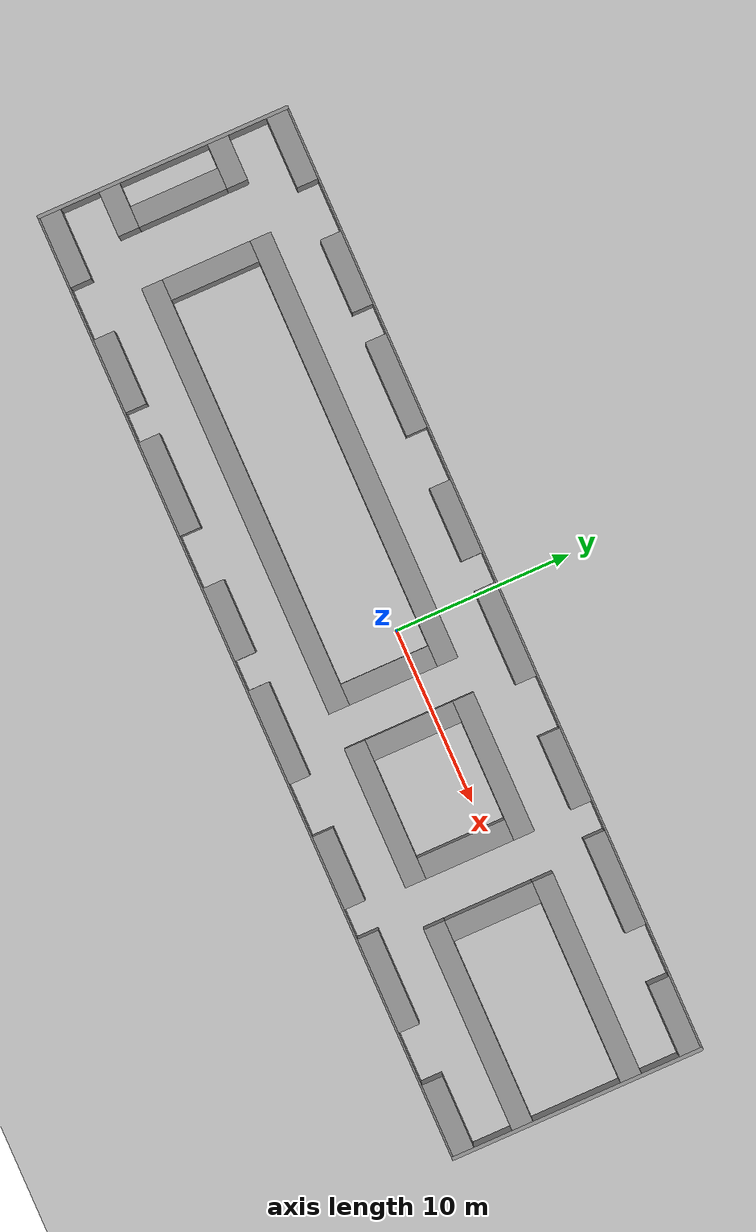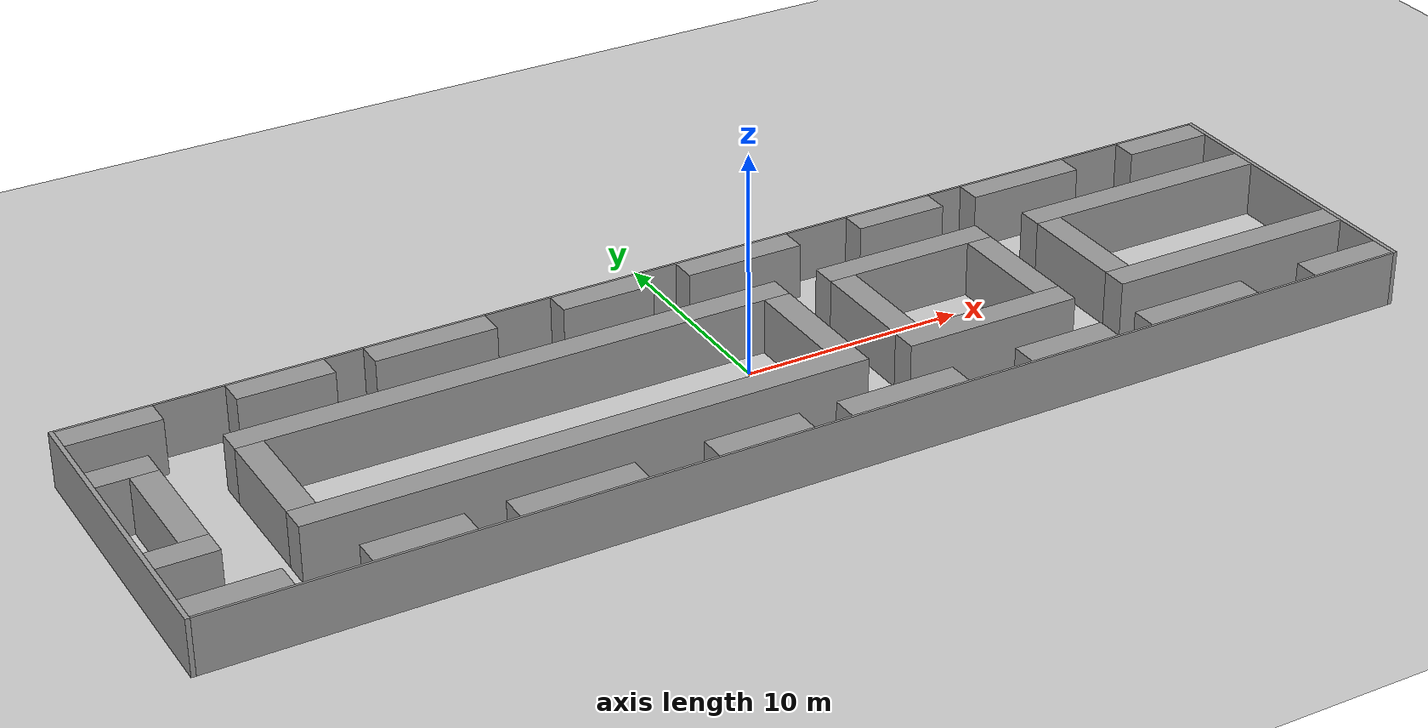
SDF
<sdf version="1.7">
 <world name="default">
  <light name="sun" type="directional">
   <pose>0 0 10 0 -0 0</pose>
   <diffuse>0.8 0.8 0.8 1</diffuse>
   <specular>0.2 0.2 0.2 1</specular>
   <attenuation>
    <range>1000</range>
    <constant>0.9</constant>
    <linear>0.01</linear>
    <quadratic>0.001</quadratic>
   </attenuation>
   <direction>-0.5 0.1 -0.9</direction>
   <spot><inner_angle>0</inner_angle><outer_angle>0</outer_angle><falloff>0</falloff></spot>
  </light>
  <model name="ground_plane">
   <static>1</static>
   <link name="link">
    <collision name="collision">
     <geometry><plane><normal>0 0 1</normal><size>100 100</size></plane></geometry>
     <surface><friction><ode><mu>100</mu><mu2>50</mu2></ode></friction></surface>
    </collision>
    <visual name="visual">
     <cast_shadows>0</cast_shadows>
     <geometry><plane><normal>0 0 1</normal><size>100 100</size></plane></geometry>
     <material>
      <script><uri>file://media/materials/scripts/gazebo.material</uri><name>Gazebo/Grey</name></script>
     </material>
    </visual>
   </link>
  </model>
  <physics name="default_physics" default="1" type="ode">
   <max_step_size>0.001</max_step_size>
   <real_time_factor>1</real_time_factor>
   <real_time_update_rate>1000</real_time_update_rate>
   <ode>
    <solver>
     <type>quick</type>
     <iters>100</iters>
     <sor>1</sor>
     <use_dynamic_moi_rescaling>0</use_dynamic_moi_rescaling>
    </solver>
    <constraints>
     <cfm>1e-05</cfm>
     <erp>0.2</erp>
     <contact_max_correcting_vel>0.2</contact_max_correcting_vel>
     <contact_surface_layer>0.001</contact_surface_layer>
    </constraints>
   </ode>
  </physics>
  <gravity>0 0 -9.8</gravity>
  <magnetic_field>6e-06 2.3e-05 -4.2e-05</magnetic_field>
  <atmosphere type="adiabatic"/>
  <scene><ambient>0.4 0.4 0.4 1</ambient><background>0.7 0.7 0.7 1</background><shadows>1</shadows></scene>
  <spherical_coordinates>
   <surface_model>EARTH_WGS84</surface_model>
   <latitude_deg>0</latitude_deg>
   <longitude_deg>0</longitude_deg>
   <elevation>0</elevation>
   <heading_deg>0</heading_deg>
  </spherical_coordinates>
  <model name="112Unit_8F">
   <pose>-0.445261 -1.32774 0 0 -0 0</pose>
   <link name="Wall_100">
    <collision name="Wall_100_Collision">
     <geometry><box><size>5.4 1.2 2.5</size></box></geometry>
     <pose>0 0 1.25 0 -0 0</pose>
    </collision>
    <visual name="Wall_100_Visual">
     <pose>0 0 1.25 0 -0 0</pose>
     <geometry><box><size>5.4 1.2 2.5</size></box></geometry>
     <material>
      <script><uri>file://media/materials/scripts/gazebo.material</uri><name>Gazebo/Grey</name></script>
      <ambient>1 1 1 1</ambient>
     </material>
     <meta><layer>0</layer></meta>
    </visual>
    <pose>-11.4 6.525 0 0 -0 0</pose>
   </link>
   <link name="Wall_102">
    <collision name="Wall_102_Collision">
     <geometry><box><size>4.2 1.2 2.5</size></box></geometry>
     <pose>0 0 1.25 0 -0 0</pose>
    </collision>
    <visual name="Wall_102_Visual">
     <pose>0 0 1.25 0 -0 0</pose>
     <geometry><box><size>4.2 1.2 2.5</size></box></geometry>
     <material>
      <script><uri>file://media/materials/scripts/gazebo.material</uri><name>Gazebo/Grey</name></script>
      <ambient>1 1 1 1</ambient>
     </material>
     <meta><layer>0</layer></meta>
    </visual>
    <pose>-17.9 6.525 0 0 -0 0</pose>
   </link>
   <link name="Wall_104">
    <collision name="Wall_104_Collision">
     <geometry><box><size>4 1.2 2.5</size></box></geometry>
     <pose>0 0 1.25 0 -0 0</pose>
    </collision>
    <visual name="Wall_104_Visual">
     <pose>0 0 1.25 0 -0 0</pose>
     <geometry><box><size>4 1.2 2.5</size></box></geometry>
     <material>
      <script><uri>file://media/materials/scripts/gazebo.material</uri><name>Gazebo/Grey</name></script>
      <ambient>1 1 1 1</ambient>
     </material>
     <meta><layer>0</layer></meta>
    </visual>
    <pose>-25 6.525 0 0 -0 0</pose>
   </link>
   <link name="Wall_106">
    <collision name="Wall_106_Collision">
     <geometry><box><size>54 0.1 2.5</size></box></geometry>
     <pose>0 0 1.25 0 -0 0</pose>
    </collision>
    <visual name="Wall_106_Visual">
     <pose>0 0 1.25 0 -0 0</pose>
     <geometry><box><size>54 0.1 2.5</size></box></geometry>
     <material>
      <script><uri>file://media/materials/scripts/gazebo.material</uri><name>Gazebo/Grey</name></script>
      <ambient>1 1 1 1</ambient>
     </material>
     <meta><layer>0</layer></meta>
    </visual>
    <pose>-0 7.175 0 0 -0 0</pose>
   </link>
   <link name="Wall_108">
    <collision name="Wall_108_Collision">
     <geometry><box><size>8 1.2 2.5</size></box></geometry>
     <pose>0 0 1.25 0 -0 0</pose>
    </collision>
    <visual name="Wall_108_Visual">
     <pose>0 0 1.25 0 -0 0</pose>
     <geometry><box><size>8 1.2 2.5</size></box></geometry>
     <material>
      <script><uri>file://media/materials/scripts/gazebo.material</uri><name>Gazebo/Grey</name></script>
      <ambient>1 1 1 1</ambient>
     </material>
     <meta><layer>0</layer></meta>
    </visual>
    <pose>9.05 -3.125 0 0 -0 0</pose>
   </link>
   <link name="Wall_110">
    <collision name="Wall_110_Collision">
     <geometry><box><size>24.5 1.2 2.5</size></box></geometry>
     <pose>0 0 1.25 0 -0 0</pose>
    </collision>
    <visual name="Wall_110_Visual">
     <pose>0 0 1.25 0 -0 0</pose>
     <geometry><box><size>24.5 1.2 2.5</size></box></geometry>
     <material>
      <script><uri>file://media/materials/scripts/gazebo.material</uri><name>Gazebo/Grey</name></script>
      <ambient>1 1 1 1</ambient>
     </material>
     <meta><layer>0</layer></meta>
    </visual>
    <pose>-9.2 -3.125 0 0 -0 0</pose>
   </link>
   <link name="Wall_112">
    <collision name="Wall_112_Collision">
     <geometry><box><size>2.55 1.2 2.5</size></box></geometry>
     <pose>0 0 1.25 0 -0 0</pose>
    </collision>
    <visual name="Wall_112_Visual">
     <pose>0 0 1.25 0 -0 0</pose>
     <geometry><box><size>2.55 1.2 2.5</size></box></geometry>
     <material>
      <script><uri>file://media/materials/scripts/gazebo.material</uri><name>Gazebo/Grey</name></script>
      <ambient>1 1 1 1</ambient>
     </material>
     <meta><layer>0</layer></meta>
    </visual>
    <pose>-25.725 -3.125 0 0 -0 0</pose>
   </link>
   <link name="Wall_114">
    <collision name="Wall_114_Collision">
     <geometry><box><size>8 1.2 2.5</size></box></geometry>
     <pose>0 0 1.25 0 -0 0</pose>
    </collision>
    <visual name="Wall_114_Visual">
     <pose>0 0 1.25 0 -0 0</pose>
     <geometry><box><size>8 1.2 2.5</size></box></geometry>
     <material>
      <script><uri>file://media/materials/scripts/gazebo.material</uri><name>Gazebo/Grey</name></script>
      <ambient>1 1 1 1</ambient>
     </material>
     <meta><layer>0</layer></meta>
    </visual>
    <pose>9.05 3.125 0 0 -0 0</pose>
   </link>
   <link name="Wall_116">
    <collision name="Wall_116_Collision">
     <geometry><box><size>24.5 1.2 2.5</size></box></geometry>
     <pose>0 0 1.25 0 -0 0</pose>
    </collision>
    <visual name="Wall_116_Visual">
     <pose>0 0 1.25 0 -0 0</pose>
     <geometry><box><size>24.5 1.2 2.5</size></box></geometry>
     <material>
      <script><uri>file://media/materials/scripts/gazebo.material</uri><name>Gazebo/Grey</name></script>
      <ambient>1 1 1 1</ambient>
     </material>
     <meta><layer>0</layer></meta>
    </visual>
    <pose>-9.2 3.125 0 0 -0 0</pose>
   </link>
   <link name="Wall_118">
    <collision name="Wall_118_Collision">
     <geometry><box><size>2.55 1.2 2.5</size></box></geometry>
     <pose>0 0 1.25 0 -0 0</pose>
    </collision>
    <visual name="Wall_118_Visual">
     <pose>0 0 1.25 0 -0 0</pose>
     <geometry><box><size>2.55 1.2 2.5</size></box></geometry>
     <material>
      <script><uri>file://media/materials/scripts/gazebo.material</uri><name>Gazebo/Grey</name></script>
      <ambient>1 1 1 1</ambient>
     </material>
     <meta><layer>0</layer></meta>
    </visual>
    <pose>-25.725 3.125 0 0 -0 0</pose>
   </link>
   <link name="Wall_120">
    <collision name="Wall_120_Collision">
     <geometry><box><size>5.05 1.2 2.5</size></box></geometry>
     <pose>0 0 1.25 0 -0 0</pose>
    </collision>
    <visual name="Wall_120_Visual">
     <pose>0 0 1.25 0 -0 0</pose>
     <geometry><box><size>5.05 1.2 2.5</size></box></geometry>
     <material>
      <script><uri>file://media/materials/scripts/gazebo.material</uri><name>Gazebo/Grey</name></script>
      <ambient>1 1 1 1</ambient>
     </material>
     <meta><layer>0</layer></meta>
    </visual>
    <pose>12.45 0 0 0 -0 -1.5708</pose>
   </link>
   <link name="Wall_122">
    <collision name="Wall_122_Collision">
     <geometry><box><size>5.05 1.2 2.5</size></box></geometry>
     <pose>0 0 1.25 0 -0 0</pose>
    </collision>
    <visual name="Wall_122_Visual">
     <pose>0 0 1.25 0 -0 0</pose>
     <geometry><box><size>5.05 1.2 2.5</size></box></geometry>
     <material>
      <script><uri>file://media/materials/scripts/gazebo.material</uri><name>Gazebo/Grey</name></script>
      <ambient>1 1 1 1</ambient>
     </material>
     <meta><layer>0</layer></meta>
    </visual>
    <pose>5.65 0 0 0 -0 -1.5708</pose>
   </link>
   <link name="Wall_124">
    <collision name="Wall_124_Collision">
     <geometry><box><size>5.05 1.2 2.5</size></box></geometry>
     <pose>0 0 1.25 0 -0 0</pose>
    </collision>
    <visual name="Wall_124_Visual">
     <pose>0 0 1.25 0 -0 0</pose>
     <geometry><box><size>5.05 1.2 2.5</size></box></geometry>
     <material>
      <script><uri>file://media/materials/scripts/gazebo.material</uri><name>Gazebo/Grey</name></script>
      <ambient>1 1 1 1</ambient>
     </material>
     <meta><layer>0</layer></meta>
    </visual>
    <pose>2.45 0 0 0 -0 -1.5708</pose>
   </link>
   <link name="Wall_126">
    <collision name="Wall_126_Collision">
     <geometry><box><size>5.05 1.2 2.5</size></box></geometry>
     <pose>0 0 1.25 0 -0 0</pose>
    </collision>
    <visual name="Wall_126_Visual">
     <pose>0 0 1.25 0 -0 0</pose>
     <geometry><box><size>5.05 1.2 2.5</size></box></geometry>
     <material>
      <script><uri>file://media/materials/scripts/gazebo.material</uri><name>Gazebo/Grey</name></script>
      <ambient>1 1 1 1</ambient>
     </material>
     <meta><layer>0</layer></meta>
    </visual>
    <pose>-20.85 0 0 0 -0 -1.5708</pose>
   </link>
   <link name="Wall_128">
    <collision name="Wall_128_Collision">
     <geometry><box><size>5.05 1.2 2.5</size></box></geometry>
     <pose>0 0 1.25 0 -0 0</pose>
    </collision>
    <visual name="Wall_128_Visual">
     <pose>0 0 1.25 0 -0 0</pose>
     <geometry><box><size>5.05 1.2 2.5</size></box></geometry>
     <material>
      <script><uri>file://media/materials/scripts/gazebo.material</uri><name>Gazebo/Grey</name></script>
      <ambient>1 1 1 1</ambient>
     </material>
     <meta><layer>0</layer></meta>
    </visual>
    <pose>-25.05 0 0 0 -0 -1.5708</pose>
   </link>
   <link name="Wall_22">
    <collision name="Wall_22_Collision">
     <geometry><box><size>4.1 1.2 2.5</size></box></geometry>
     <pose>0 0 1.25 0 -0 0</pose>
    </collision>
    <visual name="Wall_22_Visual">
     <pose>0 0 1.25 0 -0 0</pose>
     <geometry><box><size>4.1 1.2 2.5</size></box></geometry>
     <material>
      <script><uri>file://media/materials/scripts/gazebo.material</uri><name>Gazebo/Grey</name></script>
      <ambient>1 1 1 1</ambient>
     </material>
     <meta><layer>0</layer></meta>
    </visual>
    <pose>24.95 -6.525 0 0 -0 0</pose>
   </link>
   <link name="Wall_24">
    <collision name="Wall_24_Collision">
     <geometry><box><size>5.4 1.2 2.5</size></box></geometry>
     <pose>0 0 1.25 0 -0 0</pose>
    </collision>
    <visual name="Wall_24_Visual">
     <pose>0 0 1.25 0 -0 0</pose>
     <geometry><box><size>5.4 1.2 2.5</size></box></geometry>
     <material>
      <script><uri>file://media/materials/scripts/gazebo.material</uri><name>Gazebo/Grey</name></script>
      <ambient>1 1 1 1</ambient>
     </material>
     <meta><layer>0</layer></meta>
    </visual>
    <pose>17.2 -6.525 0 0 -0 0</pose>
   </link>
   <link name="Wall_26">
    <collision name="Wall_26_Collision">
     <geometry><box><size>4.2 1.2 2.5</size></box></geometry>
     <pose>0 0 1.25 0 -0 0</pose>
    </collision>
    <visual name="Wall_26_Visual">
     <pose>0 0 1.25 0 -0 0</pose>
     <geometry><box><size>4.2 1.2 2.5</size></box></geometry>
     <material>
      <script><uri>file://media/materials/scripts/gazebo.material</uri><name>Gazebo/Grey</name></script>
      <ambient>1 1 1 1</ambient>
     </material>
     <meta><layer>0</layer></meta>
    </visual>
    <pose>10.7 -6.525 0 0 -0 0</pose>
   </link>
   <link name="Wall_31">
    <collision name="Wall_31_Collision">
     <geometry><box><size>5.4 1.2 2.5</size></box></geometry>
     <pose>0 0 1.25 0 -0 0</pose>
    </collision>
    <visual name="Wall_31_Visual">
     <pose>0 0 1.25 0 -0 0</pose>
     <geometry><box><size>5.4 1.2 2.5</size></box></geometry>
     <material>
      <script><uri>file://media/materials/scripts/gazebo.material</uri><name>Gazebo/Grey</name></script>
      <ambient>1 1 1 1</ambient>
     </material>
     <meta><layer>0</layer></meta>
    </visual>
    <pose>2.9 -6.525 0 0 -0 0</pose>
   </link>
   <link name="Wall_34">
    <collision name="Wall_34_Collision">
     <geometry><box><size>4.2 1.2 2.5</size></box></geometry>
     <pose>0 0 1.25 0 -0 0</pose>
    </collision>
    <visual name="Wall_34_Visual">
     <pose>0 0 1.25 0 -0 0</pose>
     <geometry><box><size>4.2 1.2 2.5</size></box></geometry>
     <material>
      <script><uri>file://media/materials/scripts/gazebo.material</uri><name>Gazebo/Grey</name></script>
      <ambient>1 1 1 1</ambient>
     </material>
     <meta><layer>0</layer></meta>
    </visual>
    <pose>-3.6 -6.525 0 0 -0 0</pose>
   </link>
   <link name="Wall_37">
    <collision name="Wall_37_Collision">
     <geometry><box><size>5.4 1.2 2.5</size></box></geometry>
     <pose>0 0 1.25 0 -0 0</pose>
    </collision>
    <visual name="Wall_37_Visual">
     <pose>0 0 1.25 0 -0 0</pose>
     <geometry><box><size>5.4 1.2 2.5</size></box></geometry>
     <material>
      <script><uri>file://media/materials/scripts/gazebo.material</uri><name>Gazebo/Grey</name></script>
      <ambient>1 1 1 1</ambient>
     </material>
     <meta><layer>0</layer></meta>
    </visual>
    <pose>-11.4 -6.525 0 0 -0 0</pose>
   </link>
   <link name="Wall_39">
    <collision name="Wall_39_Collision">
     <geometry><box><size>4.2 1.2 2.5</size></box></geometry>
     <pose>0 0 1.25 0 -0 0</pose>
    </collision>
    <visual name="Wall_39_Visual">
     <pose>0 0 1.25 0 -0 0</pose>
     <geometry><box><size>4.2 1.2 2.5</size></box></geometry>
     <material>
      <script><uri>file://media/materials/scripts/gazebo.material</uri><name>Gazebo/Grey</name></script>
      <ambient>1 1 1 1</ambient>
     </material>
     <meta><layer>0</layer></meta>
    </visual>
    <pose>-17.9 -6.525 0 0 -0 0</pose>
   </link>
   <link name="Wall_76">
    <collision name="Wall_76_Collision">
     <geometry><box><size>4 1.2 2.5</size></box></geometry>
     <pose>0 0 1.25 0 -0 0</pose>
    </collision>
    <visual name="Wall_76_Visual">
     <pose>0 0 1.25 0 -0 0</pose>
     <geometry><box><size>4 1.2 2.5</size></box></geometry>
     <material>
      <script><uri>file://media/materials/scripts/gazebo.material</uri><name>Gazebo/Grey</name></script>
      <ambient>1 1 1 1</ambient>
     </material>
     <meta><layer>0</layer></meta>
    </visual>
    <pose>-25 -6.525 0 0 -0 0</pose>
   </link>
   <link name="Wall_78">
    <collision name="Wall_78_Collision">
     <geometry><box><size>11.55 1.2 2.5</size></box></geometry>
     <pose>0 0 1.25 0 -0 0</pose>
    </collision>
    <visual name="Wall_78_Visual">
     <pose>0 0 1.25 0 -0 0</pose>
     <geometry><box><size>11.55 1.2 2.5</size></box></geometry>
     <material>
      <script><uri>file://media/materials/scripts/gazebo.material</uri><name>Gazebo/Grey</name></script>
      <ambient>1 1 1 1</ambient>
     </material>
     <meta><layer>0</layer></meta>
    </visual>
    <pose>21.225 -3.125 0 0 -0 0</pose>
   </link>
   <link name="Wall_80">
    <collision name="Wall_80_Collision">
     <geometry><box><size>11.55 1.2 2.5</size></box></geometry>
     <pose>0 0 1.25 0 -0 0</pose>
    </collision>
    <visual name="Wall_80_Visual">
     <pose>0 0 1.25 0 -0 0</pose>
     <geometry><box><size>11.55 1.2 2.5</size></box></geometry>
     <material>
      <script><uri>file://media/materials/scripts/gazebo.material</uri><name>Gazebo/Grey</name></script>
      <ambient>1 1 1 1</ambient>
     </material>
     <meta><layer>0</layer></meta>
    </visual>
    <pose>21.225 3.125 0 0 -0 0</pose>
   </link>
   <link name="Wall_82">
    <collision name="Wall_82_Collision">
     <geometry><box><size>5.05 1.2 2.5</size></box></geometry>
     <pose>0 0 1.25 0 -0 0</pose>
    </collision>
    <visual name="Wall_82_Visual">
     <pose>0 0 1.25 0 -0 0</pose>
     <geometry><box><size>5.05 1.2 2.5</size></box></geometry>
     <material>
      <script><uri>file://media/materials/scripts/gazebo.material</uri><name>Gazebo/Grey</name></script>
      <ambient>1 1 1 1</ambient>
     </material>
     <meta><layer>0</layer></meta>
    </visual>
    <pose>16.05 0 0 0 -0 -1.5708</pose>
   </link>
   <link name="Wall_84">
    <collision name="Wall_84_Collision">
     <geometry><box><size>14.45 0.2 2.5</size></box></geometry>
     <pose>0 0 1.25 0 -0 0</pose>
    </collision>
    <visual name="Wall_84_Visual">
     <pose>0 0 1.25 0 -0 0</pose>
     <geometry><box><size>14.45 0.2 2.5</size></box></geometry>
     <material>
      <script><uri>file://media/materials/scripts/gazebo.material</uri><name>Gazebo/Grey</name></script>
      <ambient>1 1 1 1</ambient>
     </material>
     <meta><layer>0</layer></meta>
    </visual>
    <pose>27.1 0 0 0 -0 1.5708</pose>
   </link>
   <link name="Wall_86">
    <collision name="Wall_86_Collision">
     <geometry><box><size>54 0.1 2.5</size></box></geometry>
     <pose>0 0 1.25 0 -0 0</pose>
    </collision>
    <visual name="Wall_86_Visual">
     <pose>0 0 1.25 0 -0 0</pose>
     <geometry><box><size>54 0.1 2.5</size></box></geometry>
     <material>
      <script><uri>file://media/materials/scripts/gazebo.material</uri><name>Gazebo/Grey</name></script>
      <ambient>1 1 1 1</ambient>
     </material>
     <meta><layer>0</layer></meta>
    </visual>
    <pose>-0 -7.175 0 0 -0 0</pose>
   </link>
   <link name="Wall_88">
    <collision name="Wall_88_Collision">
     <geometry><box><size>14.45 0.2 2.5</size></box></geometry>
     <pose>0 0 1.25 0 -0 0</pose>
    </collision>
    <visual name="Wall_88_Visual">
     <pose>0 0 1.25 0 -0 0</pose>
     <geometry><box><size>14.45 0.2 2.5</size></box></geometry>
     <material>
      <script><uri>file://media/materials/scripts/gazebo.material</uri><name>Gazebo/Grey</name></script>
      <ambient>1 1 1 1</ambient>
     </material>
     <meta><layer>0</layer></meta>
    </visual>
    <pose>-27.1 0 0 0 -0 1.5708</pose>
   </link>
   <link name="Wall_90">
    <collision name="Wall_90_Collision">
     <geometry><box><size>4.1 1.2 2.5</size></box></geometry>
     <pose>0 0 1.25 0 -0 0</pose>
    </collision>
    <visual name="Wall_90_Visual">
     <pose>0 0 1.25 0 -0 0</pose>
     <geometry><box><size>4.1 1.2 2.5</size></box></geometry>
     <material>
      <script><uri>file://media/materials/scripts/gazebo.material</uri><name>Gazebo/Grey</name></script>
      <ambient>1 1 1 1</ambient>
     </material>
     <meta><layer>0</layer></meta>
    </visual>
    <pose>24.95 6.525 0 0 -0 0</pose>
   </link>
   <link name="Wall_92">
    <collision name="Wall_92_Collision">
     <geometry><box><size>5.4 1.2 2.5</size></box></geometry>
     <pose>0 0 1.25 0 -0 0</pose>
    </collision>
    <visual name="Wall_92_Visual">
     <pose>0 0 1.25 0 -0 0</pose>
     <geometry><box><size>5.4 1.2 2.5</size></box></geometry>
     <material>
      <script><uri>file://media/materials/scripts/gazebo.material</uri><name>Gazebo/Grey</name></script>
      <ambient>1 1 1 1</ambient>
     </material>
     <meta><layer>0</layer></meta>
    </visual>
    <pose>17.2 6.525 0 0 -0 0</pose>
   </link>
   <link name="Wall_94">
    <collision name="Wall_94_Collision">
     <geometry><box><size>4.2 1.2 2.5</size></box></geometry>
     <pose>0 0 1.25 0 -0 0</pose>
    </collision>
    <visual name="Wall_94_Visual">
     <pose>0 0 1.25 0 -0 0</pose>
     <geometry><box><size>4.2 1.2 2.5</size></box></geometry>
     <material>
      <script><uri>file://media/materials/scripts/gazebo.material</uri><name>Gazebo/Grey</name></script>
      <ambient>1 1 1 1</ambient>
     </material>
     <meta><layer>0</layer></meta>
    </visual>
    <pose>10.7 6.525 0 0 -0 0</pose>
   </link>
   <link name="Wall_96">
    <collision name="Wall_96_Collision">
     <geometry><box><size>5.4 1.2 2.5</size></box></geometry>
     <pose>0 0 1.25 0 -0 0</pose>
    </collision>
    <visual name="Wall_96_Visual">
     <pose>0 0 1.25 0 -0 0</pose>
     <geometry><box><size>5.4 1.2 2.5</size></box></geometry>
     <material>
      <script><uri>file://media/materials/scripts/gazebo.material</uri><name>Gazebo/Grey</name></script>
      <ambient>1 1 1 1</ambient>
     </material>
     <meta><layer>0</layer></meta>
    </visual>
    <pose>2.9 6.525 0 0 -0 0</pose>
   </link>
   <link name="Wall_98">
    <collision name="Wall_98_Collision">
     <geometry><box><size>4.2 1.2 2.5</size></box></geometry>
     <pose>0 0 1.25 0 -0 0</pose>
    </collision>
    <visual name="Wall_98_Visual">
     <pose>0 0 1.25 0 -0 0</pose>
     <geometry><box><size>4.2 1.2 2.5</size></box></geometry>
     <material>
      <script><uri>file://media/materials/scripts/gazebo.material</uri><name>Gazebo/Grey</name></script>
      <ambient>1 1 1 1</ambient>
     </material>
     <meta><layer>0</layer></meta>
    </visual>
    <pose>-3.6 6.525 0 0 -0 0</pose>
   </link>
   <static>1</static>
  </model>
  <audio><device>default</device></audio>
 </world>
</sdf>
